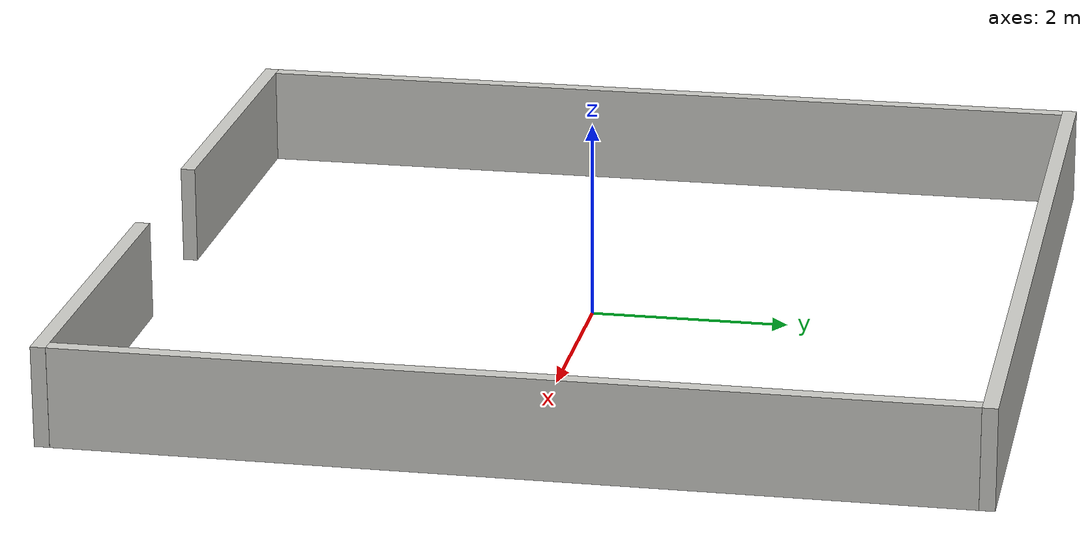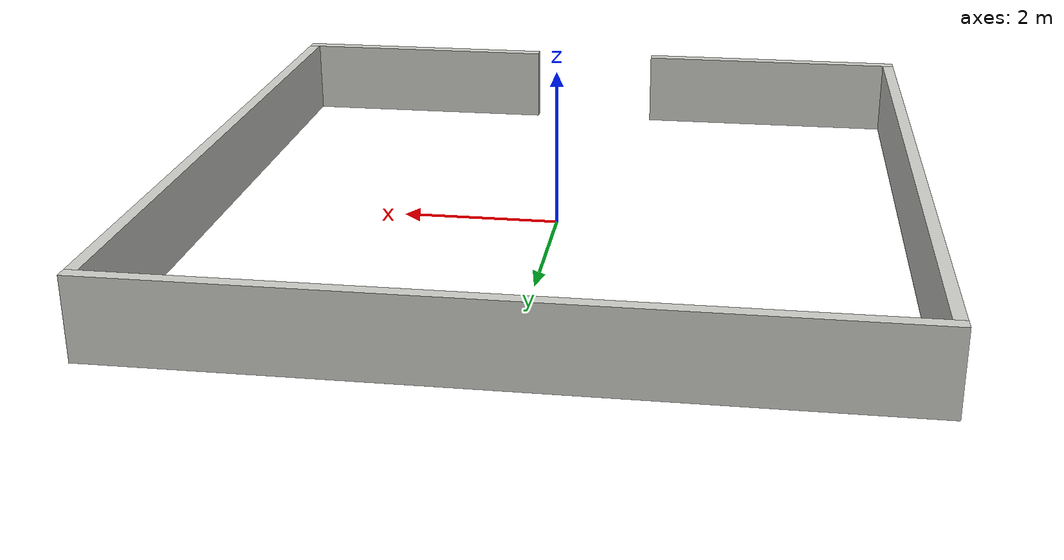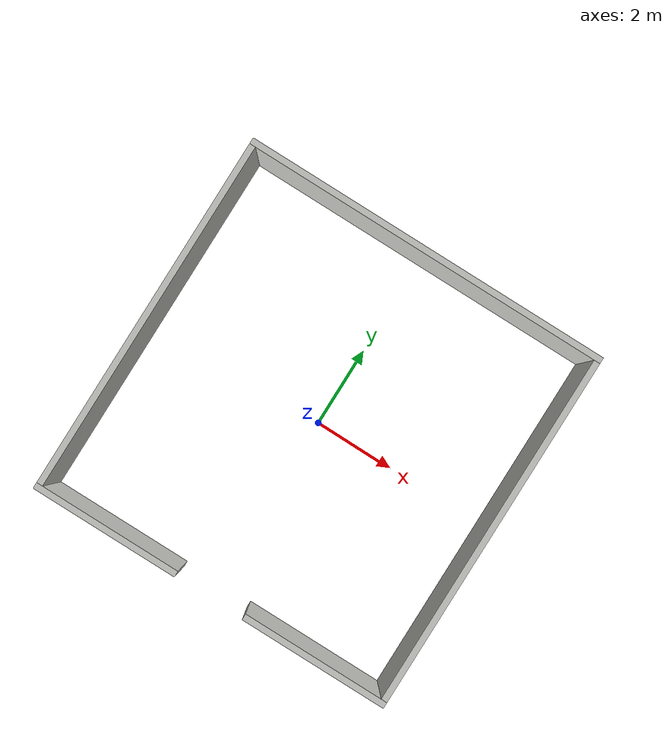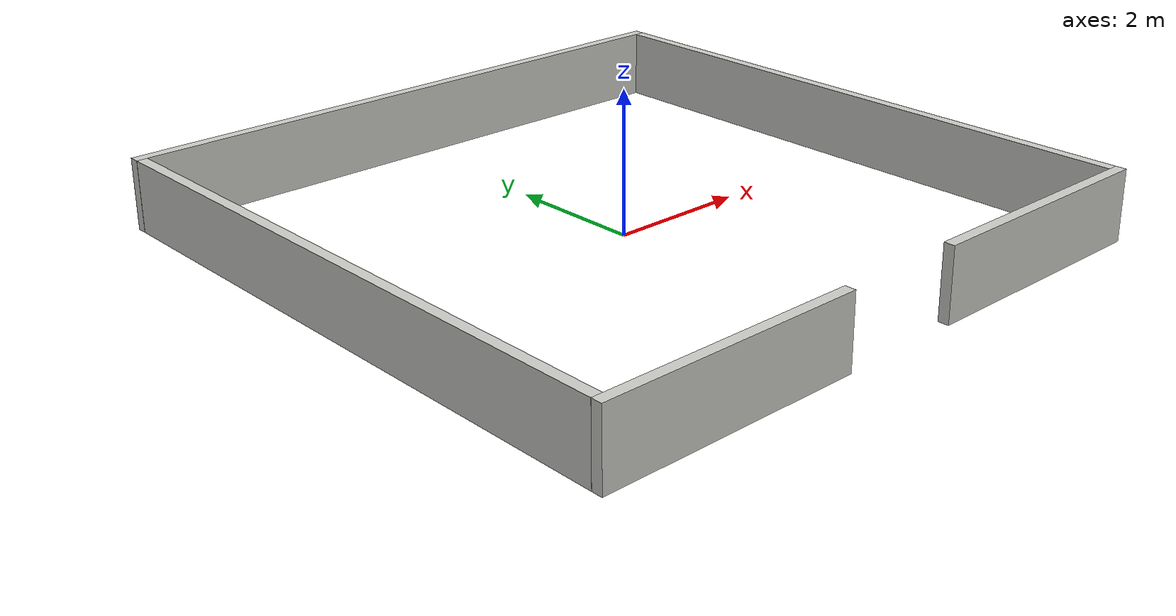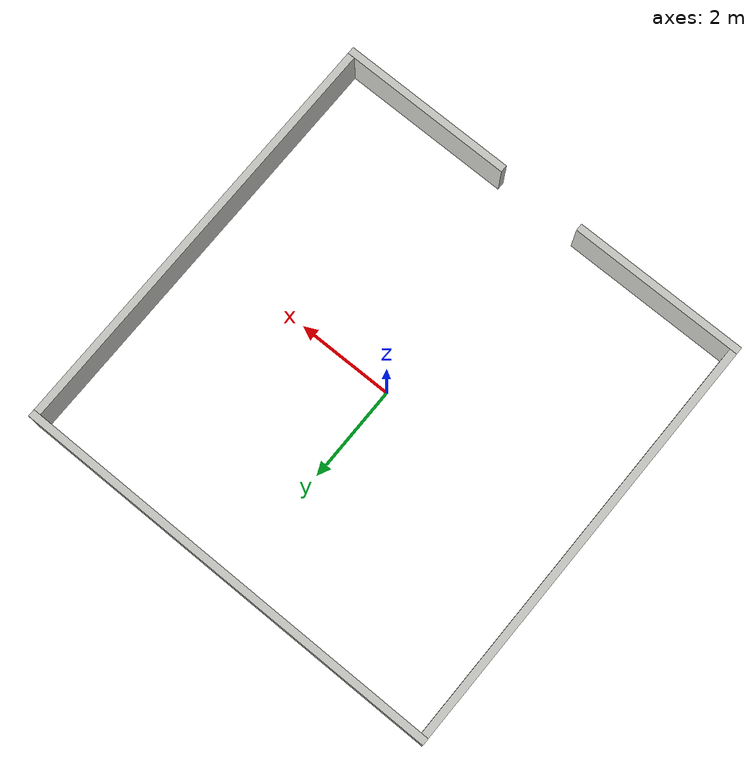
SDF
<?xml version='1.0'?>
<sdf version='1.6'>
  <model name='room_5x5_onedoor'>
    <static>1</static>
    <pose frame=''>0 0 0 0 -0 0</pose>
    <link name='Wall_1'>
      <collision name='Wall_1_Collision'>
        <geometry>
          <box>
            <size>8.75 0.15 1.0</size>
          </box>
        </geometry>
        <pose frame=''>0 0 0.5 0 -0 0</pose>
      </collision>
      <visual name='Wall_1_Visual'>
        <pose frame=''>0 0 0.5 0 -0 0</pose>
        <geometry>
          <box>
            <size>8.75 0.15 1.0</size>
          </box>
        </geometry>
        <material>
          <script>
            <uri>file://media/materials/scripts/gazebo.material</uri>
            <name>Gazebo/CeilingTiled</name>
          </script>
          <ambient>1 0.764706 0.305882 1</ambient>
        </material>
      </visual>
      <pose frame=''>4.4496 -3.6e-05 0 0 0 -1.5708</pose>
    </link>
    <link name='Wall_2'>
      <collision name='Wall_2_Collision'>
        <geometry>
          <box>
            <size>8.75 0.15 1.0</size>
          </box>
        </geometry>
        <pose frame=''>0 0 0.5 0 -0 0</pose>
      </collision>
      <visual name='Wall_2_Visual'>
        <pose frame=''>0 0 0.5 0 -0 0</pose>
        <geometry>
          <box>
            <size>8.75 0.15 1.0</size>
          </box>
        </geometry>
        <material>
          <script>
            <uri>file://media/materials/scripts/gazebo.material</uri>
            <name>Gazebo/CeilingTiled</name>
          </script>
          <ambient>1 0.764706 0.305882 1</ambient>
        </material>
      </visual>
      <pose frame=''>-4.44843 0.001197 0 0 0 -1.5708</pose>
    </link>
    <link name='Wall_3'>
      <collision name='Wall_3_Collision'>
        <geometry>
          <box>
            <size>3.65 0.15 1.0</size>
          </box>
        </geometry>
        <pose frame=''>0 0 0.5 0 -0 0</pose>
      </collision>
      <visual name='Wall_3_Visual'>
        <pose frame=''>0 0 0.5 0 -0 0</pose>
        <geometry>
          <box>
            <size>3.65 0.15 1.0</size>
          </box>
        </geometry>
        <material>
          <script>
            <uri>file://media/materials/scripts/gazebo.material</uri>
            <name>Gazebo/CeilingTiled</name>
          </script>
          <ambient>1 0.764706 0.305882 1</ambient>
        </material>
      </visual>
      <pose frame=''>2.7001 -4.45036 0 0 -0 0</pose>
    </link>
    <link name='Wall_4'>
      <collision name='Wall_4_Collision'>
        <geometry>
          <box>
            <size>9.05 0.15 1.0</size>
          </box>
        </geometry>
        <pose frame=''>0 0 0.5 0 -0 0</pose>
      </collision>
      <visual name='Wall_4_Visual'>
        <pose frame=''>0 0 0.5 0 -0 0</pose>
        <geometry>
          <box>
            <size>9.05 0.15 1.0</size>
          </box>
        </geometry>
        <material>
          <script>
            <uri>file://media/materials/scripts/gazebo.material</uri>
            <name>Gazebo/CeilingTiled</name>
          </script>
          <ambient>1 0.764706 0.305882 1</ambient>
        </material>
      </visual>
      <pose frame=''>-9.6e-05 4.45036 0 0 -0 0</pose>
    </link>
    <link name='Wall_5'>
      <collision name='Wall_5_Collision'>
        <geometry>
          <box>
            <size>3.65 0.15 1.0</size>
          </box>
        </geometry>
        <pose frame=''>0 0 0.5 0 -0 0</pose>
      </collision>
      <visual name='Wall_5_Visual'>
        <pose frame=''>0 0 0.5 0 -0 0</pose>
        <geometry>
          <box>
            <size>3.65 0.15 1.0</size>
          </box>
        </geometry>
        <material>
          <script>
            <uri>file://media/materials/scripts/gazebo.material</uri>
            <name>Gazebo/CeilingTiled</name>
          </script>
          <ambient>1 0.764706 0.305882 1</ambient>
        </material>
      </visual>
      <pose frame=''>-2.69834 -4.44941 0 0 -0 0</pose>
    </link>
  </model>
</sdf>
